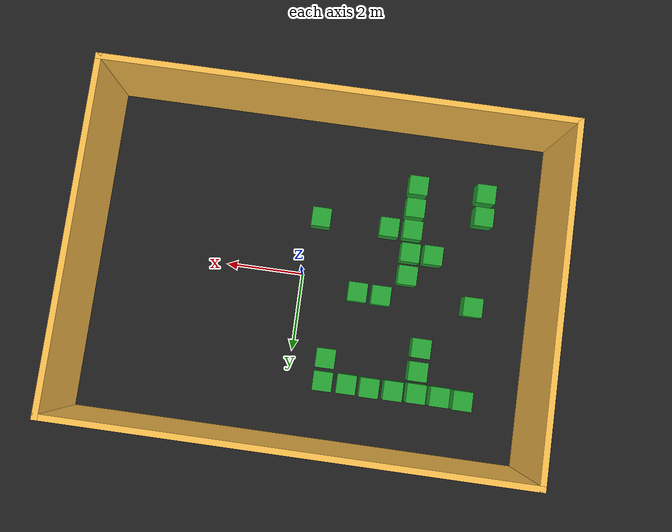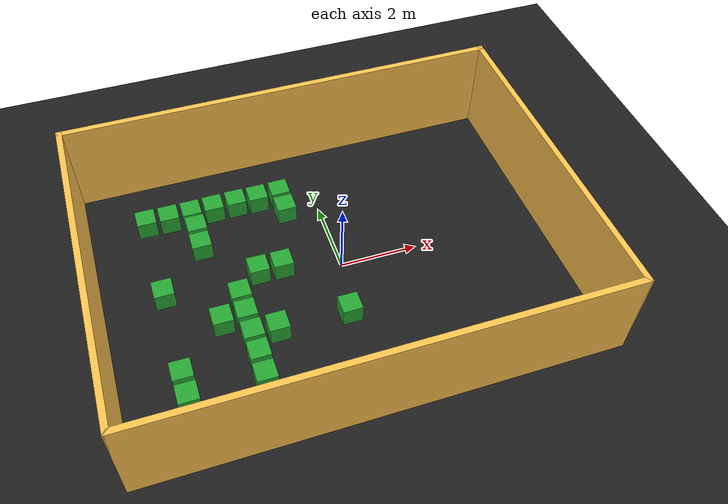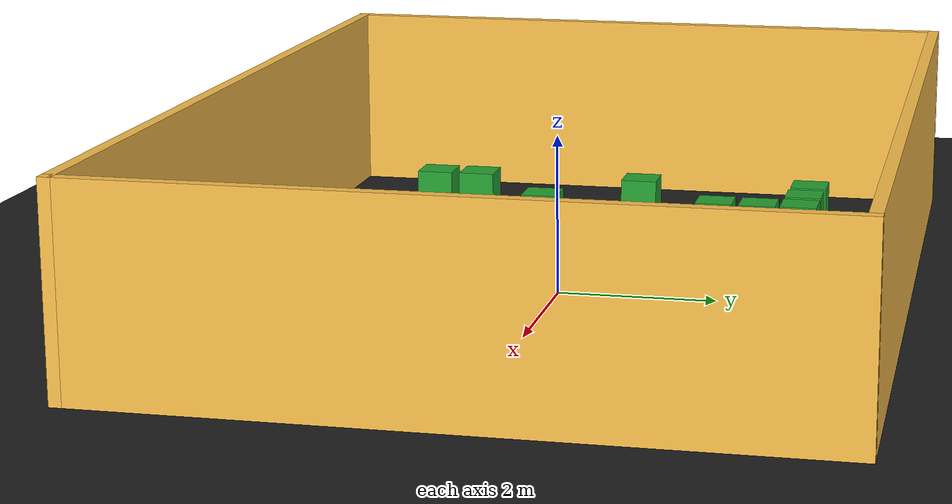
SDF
<sdf version="1.7">
 <world name="default">
  <model name="ground_plane">
   <static>1</static>
   <link name="link">
    <collision name="collision">
     <geometry><plane><normal>0 0 1</normal><size>100 100</size></plane></geometry>
     <surface>
      <friction>
       <ode>
        <mu>1.000000</mu>
        <mu2>1.000000</mu2>
        <fdir1>0.000000 0.000000 0.000000</fdir1>
        <slip1>0.000000</slip1>
        <slip2>0.000000</slip2>
       </ode>
      </friction>
      <bounce>
       <restitution_coefficient>0.000000</restitution_coefficient>
       <threshold>100000.000000</threshold>
      </bounce>
      <contact>
       <ode>
        <soft_cfm>0.000000</soft_cfm>
        <soft_erp>0.200000</soft_erp>
        <kp>1000000000.000000</kp>
        <kd>1.000000</kd>
        <max_vel>100.000000</max_vel>
        <min_depth>0.001000</min_depth>
       </ode>
      </contact>
     </surface>
    </collision>
    <visual name="visual">
     <cast_shadows>0</cast_shadows>
     <geometry><plane><normal>0 0 1</normal><size>100 100</size></plane></geometry>
     <material>
      <script><uri>file://media/materials/scripts/gazebo.material</uri><name>Gazebo/Black</name></script>
     </material>
    </visual>
   </link>
  </model>
  <model name="aius3011">
   <pose>-0.3 0 0 0 -0 0</pose>
   <link name="Wall_0">
    <collision name="Wall_0_Collision">
     <geometry><box><size>11.7 0.15 2.5</size></box></geometry>
     <pose>0 0 1.25 0 -0 0</pose>
    </collision>
    <visual name="Wall_0_Visual">
     <pose>0 0 1.25 0 -0 0</pose>
     <geometry><box><size>11.7 0.15 2.5</size></box></geometry>
     <material>
      <script><uri>file://media/materials/scripts/gazebo.material</uri><name>Gazebo/Grey</name></script>
      <ambient>1 0.764706 0.305882 1</ambient>
     </material>
     <meta><layer>0</layer></meta>
    </visual>
    <pose>-0 -4.275 0 0 -0 0</pose>
   </link>
   <link name="Wall_2">
    <collision name="Wall_2_Collision">
     <geometry><box><size>8.7 0.15 2.5</size></box></geometry>
     <pose>0 0 1.25 0 -0 0</pose>
    </collision>
    <visual name="Wall_2_Visual">
     <pose>0 0 1.25 0 -0 0</pose>
     <geometry><box><size>8.7 0.15 2.5</size></box></geometry>
     <material>
      <script><uri>file://media/materials/scripts/gazebo.material</uri><name>Gazebo/Grey</name></script>
      <ambient>1 0.764706 0.305882 1</ambient>
     </material>
     <meta><layer>0</layer></meta>
    </visual>
    <pose>-5.775 0 0 0 -0 1.5708</pose>
   </link>
   <link name="Wall_4">
    <collision name="Wall_4_Collision">
     <geometry><box><size>11.7 0.15 2.5</size></box></geometry>
     <pose>0 0 1.25 0 -0 0</pose>
    </collision>
    <visual name="Wall_4_Visual">
     <pose>0 0 1.25 0 -0 0</pose>
     <geometry><box><size>11.7 0.15 2.5</size></box></geometry>
     <material>
      <script><uri>file://media/materials/scripts/gazebo.material</uri><name>Gazebo/Grey</name></script>
      <ambient>1 0.764706 0.305882 1</ambient>
     </material>
     <meta><layer>0</layer></meta>
    </visual>
    <pose>-0 4.275 0 0 -0 0</pose>
   </link>
   <link name="Wall_6">
    <collision name="Wall_6_Collision">
     <geometry><box><size>8.7 0.15 2.5</size></box></geometry>
     <pose>0 0 1.25 0 -0 0</pose>
    </collision>
    <visual name="Wall_6_Visual">
     <pose>0 0 1.25 0 -0 0</pose>
     <geometry><box><size>8.7 0.15 2.5</size></box></geometry>
     <material>
      <script><uri>file://media/materials/scripts/gazebo.material</uri><name>Gazebo/Grey</name></script>
      <ambient>1 0.764706 0.305882 1</ambient>
     </material>
     <meta><layer>0</layer></meta>
    </visual>
    <pose>5.775 0 0 0 -0 -1.5708</pose>
   </link>
   <static>1</static>
  </model>
  <model name="obstacle18">
   <link name="link_0">
    <inertial>
     <mass>0.1</mass>
     <inertia><ixx>10</ixx><ixy>0</ixy><ixz>0</ixz><iyy>10</iyy><iyz>0</iyz><izz>10</izz></inertia>
    </inertial>
    <visual name="visual">
     <geometry><box><size>0.5 0.5 0.5</size></box></geometry>
     <material>
      <lighting>1</lighting>
      <script><uri>file://media/materials/scripts/gazebo.material</uri><name>Gazebo/Green</name></script>
      <shader type="pixel"><normal_map>__default__</normal_map></shader>
      <ambient>0.3 0.3 0.3 1</ambient>
      <diffuse>0.7 0.7 0.7 1</diffuse>
      <specular>0.01 0.01 0.01 1</specular>
      <emissive>0 0 0 1</emissive>
     </material>
    </visual>
    <collision name="collision">
     <geometry><box><size>0.5 0.5 0.5</size></box></geometry>
     <surface>
      <friction>
       <ode>
        <mu>0.998500</mu>
        <mu2>0.998500</mu2>
        <fdir1>0.000000 0.000000 0.000000</fdir1>
        <slip1>0.000000</slip1>
        <slip2>0.000000</slip2>
       </ode>
      </friction>
      <bounce>
       <restitution_coefficient>0.000000</restitution_coefficient>
       <threshold>100000.000000</threshold>
      </bounce>
      <contact>
       <ode>
        <soft_cfm>0.000000</soft_cfm>
        <soft_erp>0.200000</soft_erp>
        <kp>100000.000000</kp>
        <kd>1.000000</kd>
        <max_vel>100.000000</max_vel>
        <min_depth>0.001000</min_depth>
       </ode>
      </contact>
     </surface>
     <laser_retro>0.000000</laser_retro>
    </collision>
   </link>
   <static>0</static>
   <pose>-0.296477 -1.51677 0.26 0 -0 0</pose>
  </model>
  <model name="obstacle19">
   <link name="link_0">
    <inertial>
     <mass>0.1</mass>
     <inertia><ixx>10</ixx><ixy>0</ixy><ixz>0</ixz><iyy>10</iyy><iyz>0</iyz><izz>10</izz></inertia>
    </inertial>
    <visual name="visual">
     <geometry><box><size>0.5 0.5 0.5</size></box></geometry>
     <material>
      <lighting>1</lighting>
      <script><uri>file://media/materials/scripts/gazebo.material</uri><name>Gazebo/Green</name></script>
      <shader type="pixel"><normal_map>__default__</normal_map></shader>
      <ambient>0.3 0.3 0.3 1</ambient>
      <diffuse>0.7 0.7 0.7 1</diffuse>
      <specular>0.01 0.01 0.01 1</specular>
      <emissive>0 0 0 1</emissive>
     </material>
    </visual>
    <collision name="collision">
     <geometry><box><size>0.5 0.5 0.5</size></box></geometry>
     <surface>
      <friction>
       <ode>
        <mu>0.998500</mu>
        <mu2>0.998500</mu2>
        <fdir1>0.000000 0.000000 0.000000</fdir1>
        <slip1>0.000000</slip1>
        <slip2>0.000000</slip2>
       </ode>
      </friction>
      <bounce>
       <restitution_coefficient>0.000000</restitution_coefficient>
       <threshold>100000.000000</threshold>
      </bounce>
      <contact>
       <ode>
        <soft_cfm>0.000000</soft_cfm>
        <soft_erp>0.200000</soft_erp>
        <kp>100000.000000</kp>
        <kd>1.000000</kd>
        <max_vel>100.000000</max_vel>
        <min_depth>0.001000</min_depth>
       </ode>
      </contact>
     </surface>
     <laser_retro>0.000000</laser_retro>
    </collision>
   </link>
   <static>0</static>
   <pose>-0.901554 2.6911 0.26 0 -0 0</pose>
  </model>
  <model name="obstacle20">
   <link name="link_0">
    <inertial>
     <mass>0.1</mass>
     <inertia><ixx>10</ixx><ixy>0</ixy><ixz>0</ixz><iyy>10</iyy><iyz>0</iyz><izz>10</izz></inertia>
    </inertial>
    <visual name="visual">
     <geometry><box><size>0.5 0.5 0.5</size></box></geometry>
     <material>
      <lighting>1</lighting>
      <script><uri>file://media/materials/scripts/gazebo.material</uri><name>Gazebo/Green</name></script>
      <shader type="pixel"><normal_map>__default__</normal_map></shader>
      <ambient>0.3 0.3 0.3 1</ambient>
      <diffuse>0.7 0.7 0.7 1</diffuse>
      <specular>0.01 0.01 0.01 1</specular>
      <emissive>0 0 0 1</emissive>
     </material>
    </visual>
    <collision name="collision">
     <geometry><box><size>0.5 0.5 0.5</size></box></geometry>
     <surface>
      <friction>
       <ode>
        <mu>0.998500</mu>
        <mu2>0.998500</mu2>
        <fdir1>0.000000 0.000000 0.000000</fdir1>
        <slip1>0.000000</slip1>
        <slip2>0.000000</slip2>
       </ode>
      </friction>
      <bounce>
       <restitution_coefficient>0.000000</restitution_coefficient>
       <threshold>100000.000000</threshold>
      </bounce>
      <contact>
       <ode>
        <soft_cfm>0.000000</soft_cfm>
        <soft_erp>0.200000</soft_erp>
        <kp>100000.000000</kp>
        <kd>1.000000</kd>
        <max_vel>100.000000</max_vel>
        <min_depth>0.001000</min_depth>
       </ode>
      </contact>
     </surface>
     <laser_retro>0.000000</laser_retro>
    </collision>
   </link>
   <static>0</static>
   <pose>-0.898111 2.10192 0.26 0 -0 0</pose>
  </model>
  <model name="obstacle21">
   <link name="link_0">
    <inertial>
     <mass>0.1</mass>
     <inertia><ixx>10</ixx><ixy>0</ixy><ixz>0</ixz><iyy>10</iyy><iyz>0</iyz><izz>10</izz></inertia>
    </inertial>
    <visual name="visual">
     <geometry><box><size>0.5 0.5 0.5</size></box></geometry>
     <material>
      <lighting>1</lighting>
      <script><uri>file://media/materials/scripts/gazebo.material</uri><name>Gazebo/Green</name></script>
      <shader type="pixel"><normal_map>__default__</normal_map></shader>
      <ambient>0.3 0.3 0.3 1</ambient>
      <diffuse>0.7 0.7 0.7 1</diffuse>
      <specular>0.01 0.01 0.01 1</specular>
      <emissive>0 0 0 1</emissive>
     </material>
    </visual>
    <collision name="collision">
     <geometry><box><size>0.5 0.5 0.5</size></box></geometry>
     <surface>
      <friction>
       <ode>
        <mu>0.998500</mu>
        <mu2>0.998500</mu2>
        <fdir1>0.000000 0.000000 0.000000</fdir1>
        <slip1>0.000000</slip1>
        <slip2>0.000000</slip2>
       </ode>
      </friction>
      <bounce>
       <restitution_coefficient>0.000000</restitution_coefficient>
       <threshold>100000.000000</threshold>
      </bounce>
      <contact>
       <ode>
        <soft_cfm>0.000000</soft_cfm>
        <soft_erp>0.200000</soft_erp>
        <kp>100000.000000</kp>
        <kd>1.000000</kd>
        <max_vel>100.000000</max_vel>
        <min_depth>0.001000</min_depth>
       </ode>
      </contact>
     </surface>
     <laser_retro>0.000000</laser_retro>
    </collision>
   </link>
   <static>0</static>
   <pose>-1.5153 2.68505 0.26 0 -0 0</pose>
  </model>
  <model name="obstacle22">
   <link name="link_0">
    <inertial>
     <mass>0.1</mass>
     <inertia><ixx>10</ixx><ixy>0</ixy><ixz>0</ixz><iyy>10</iyy><iyz>0</iyz><izz>10</izz></inertia>
    </inertial>
    <visual name="visual">
     <geometry><box><size>0.5 0.5 0.5</size></box></geometry>
     <material>
      <lighting>1</lighting>
      <script><uri>file://media/materials/scripts/gazebo.material</uri><name>Gazebo/Green</name></script>
      <shader type="pixel"><normal_map>__default__</normal_map></shader>
      <ambient>0.3 0.3 0.3 1</ambient>
      <diffuse>0.7 0.7 0.7 1</diffuse>
      <specular>0.01 0.01 0.01 1</specular>
      <emissive>0 0 0 1</emissive>
     </material>
    </visual>
    <collision name="collision">
     <geometry><box><size>0.5 0.5 0.5</size></box></geometry>
     <surface>
      <friction>
       <ode>
        <mu>0.998500</mu>
        <mu2>0.998500</mu2>
        <fdir1>0.000000 0.000000 0.000000</fdir1>
        <slip1>0.000000</slip1>
        <slip2>0.000000</slip2>
       </ode>
      </friction>
      <bounce>
       <restitution_coefficient>0.000000</restitution_coefficient>
       <threshold>100000.000000</threshold>
      </bounce>
      <contact>
       <ode>
        <soft_cfm>0.000000</soft_cfm>
        <soft_erp>0.200000</soft_erp>
        <kp>100000.000000</kp>
        <kd>1.000000</kd>
        <max_vel>100.000000</max_vel>
        <min_depth>0.001000</min_depth>
       </ode>
      </contact>
     </surface>
     <laser_retro>0.000000</laser_retro>
    </collision>
   </link>
   <static>0</static>
   <pose>-2.1056 2.69717 0.26 0 -0 0</pose>
  </model>
  <model name="obstacle23">
   <link name="link_0">
    <inertial>
     <mass>0.1</mass>
     <inertia><ixx>10</ixx><ixy>0</ixy><ixz>0</ixz><iyy>10</iyy><iyz>0</iyz><izz>10</izz></inertia>
    </inertial>
    <visual name="visual">
     <geometry><box><size>0.5 0.5 0.5</size></box></geometry>
     <material>
      <lighting>1</lighting>
      <script><uri>file://media/materials/scripts/gazebo.material</uri><name>Gazebo/Green</name></script>
      <shader type="pixel"><normal_map>__default__</normal_map></shader>
      <ambient>0.3 0.3 0.3 1</ambient>
      <diffuse>0.7 0.7 0.7 1</diffuse>
      <specular>0.01 0.01 0.01 1</specular>
      <emissive>0 0 0 1</emissive>
     </material>
    </visual>
    <collision name="collision">
     <geometry><box><size>0.5 0.5 0.5</size></box></geometry>
     <surface>
      <friction>
       <ode>
        <mu>0.998500</mu>
        <mu2>0.998500</mu2>
        <fdir1>0.000000 0.000000 0.000000</fdir1>
        <slip1>0.000000</slip1>
        <slip2>0.000000</slip2>
       </ode>
      </friction>
      <bounce>
       <restitution_coefficient>0.000000</restitution_coefficient>
       <threshold>100000.000000</threshold>
      </bounce>
      <contact>
       <ode>
        <soft_cfm>0.000000</soft_cfm>
        <soft_erp>0.200000</soft_erp>
        <kp>100000.000000</kp>
        <kd>1.000000</kd>
        <max_vel>100.000000</max_vel>
        <min_depth>0.001000</min_depth>
       </ode>
      </contact>
     </surface>
     <laser_retro>0.000000</laser_retro>
    </collision>
   </link>
   <static>0</static>
   <pose>-2.71726 2.68879 0.26 0 -0 0</pose>
  </model>
  <model name="obstacle24">
   <link name="link_0">
    <inertial>
     <mass>0.1</mass>
     <inertia><ixx>10</ixx><ixy>0</ixy><ixz>0</ixz><iyy>10</iyy><iyz>0</iyz><izz>10</izz></inertia>
    </inertial>
    <visual name="visual">
     <geometry><box><size>0.5 0.5 0.5</size></box></geometry>
     <material>
      <lighting>1</lighting>
      <script><uri>file://media/materials/scripts/gazebo.material</uri><name>Gazebo/Green</name></script>
      <shader type="pixel"><normal_map>__default__</normal_map></shader>
      <ambient>0.3 0.3 0.3 1</ambient>
      <diffuse>0.7 0.7 0.7 1</diffuse>
      <specular>0.01 0.01 0.01 1</specular>
      <emissive>0 0 0 1</emissive>
     </material>
    </visual>
    <collision name="collision">
     <geometry><box><size>0.5 0.5 0.5</size></box></geometry>
     <surface>
      <friction>
       <ode>
        <mu>0.998500</mu>
        <mu2>0.998500</mu2>
        <fdir1>0.000000 0.000000 0.000000</fdir1>
        <slip1>0.000000</slip1>
        <slip2>0.000000</slip2>
       </ode>
      </friction>
      <bounce>
       <restitution_coefficient>0.000000</restitution_coefficient>
       <threshold>100000.000000</threshold>
      </bounce>
      <contact>
       <ode>
        <soft_cfm>0.000000</soft_cfm>
        <soft_erp>0.200000</soft_erp>
        <kp>100000.000000</kp>
        <kd>1.000000</kd>
        <max_vel>100.000000</max_vel>
        <min_depth>0.001000</min_depth>
       </ode>
      </contact>
     </surface>
     <laser_retro>0.000000</laser_retro>
    </collision>
   </link>
   <static>0</static>
   <pose>-3.31293 2.67633 0.26 0 -0 0</pose>
  </model>
  <model name="obstacle26">
   <link name="link_0">
    <inertial>
     <mass>0.1</mass>
     <inertia><ixx>10</ixx><ixy>0</ixy><ixz>0</ixz><iyy>10</iyy><iyz>0</iyz><izz>10</izz></inertia>
    </inertial>
    <visual name="visual">
     <geometry><box><size>0.5 0.5 0.5</size></box></geometry>
     <material>
      <lighting>1</lighting>
      <script><uri>file://media/materials/scripts/gazebo.material</uri><name>Gazebo/Green</name></script>
      <shader type="pixel"><normal_map>__default__</normal_map></shader>
      <ambient>0.3 0.3 0.3 1</ambient>
      <diffuse>0.7 0.7 0.7 1</diffuse>
      <specular>0.01 0.01 0.01 1</specular>
      <emissive>0 0 0 1</emissive>
     </material>
    </visual>
    <collision name="collision">
     <geometry><box><size>0.5 0.5 0.5</size></box></geometry>
     <surface>
      <friction>
       <ode>
        <mu>0.998500</mu>
        <mu2>0.998500</mu2>
        <fdir1>0.000000 0.000000 0.000000</fdir1>
        <slip1>0.000000</slip1>
        <slip2>0.000000</slip2>
       </ode>
      </friction>
      <bounce>
       <restitution_coefficient>0.000000</restitution_coefficient>
       <threshold>100000.000000</threshold>
      </bounce>
      <contact>
       <ode>
        <soft_cfm>0.000000</soft_cfm>
        <soft_erp>0.200000</soft_erp>
        <kp>100000.000000</kp>
        <kd>1.000000</kd>
        <max_vel>100.000000</max_vel>
        <min_depth>0.001000</min_depth>
       </ode>
      </contact>
     </surface>
     <laser_retro>0.000000</laser_retro>
    </collision>
   </link>
   <static>0</static>
   <pose>-3.90921 2.67984 0.26 0 -0 0</pose>
  </model>
  <model name="obstacle27">
   <link name="link_0">
    <inertial>
     <mass>0.1</mass>
     <inertia><ixx>10</ixx><ixy>0</ixy><ixz>0</ixz><iyy>10</iyy><iyz>0</iyz><izz>10</izz></inertia>
    </inertial>
    <visual name="visual">
     <geometry><box><size>0.5 0.5 0.5</size></box></geometry>
     <material>
      <lighting>1</lighting>
      <script><uri>file://media/materials/scripts/gazebo.material</uri><name>Gazebo/Green</name></script>
      <shader type="pixel"><normal_map>__default__</normal_map></shader>
      <ambient>0.3 0.3 0.3 1</ambient>
      <diffuse>0.7 0.7 0.7 1</diffuse>
      <specular>0.01 0.01 0.01 1</specular>
      <emissive>0 0 0 1</emissive>
     </material>
    </visual>
    <collision name="collision">
     <geometry><box><size>0.5 0.5 0.5</size></box></geometry>
     <surface>
      <friction>
       <ode>
        <mu>0.998500</mu>
        <mu2>0.998500</mu2>
        <fdir1>0.000000 0.000000 0.000000</fdir1>
        <slip1>0.000000</slip1>
        <slip2>0.000000</slip2>
       </ode>
      </friction>
      <bounce>
       <restitution_coefficient>0.000000</restitution_coefficient>
       <threshold>100000.000000</threshold>
      </bounce>
      <contact>
       <ode>
        <soft_cfm>0.000000</soft_cfm>
        <soft_erp>0.200000</soft_erp>
        <kp>100000.000000</kp>
        <kd>1.000000</kd>
        <max_vel>100.000000</max_vel>
        <min_depth>0.001000</min_depth>
       </ode>
      </contact>
     </surface>
     <laser_retro>0.000000</laser_retro>
    </collision>
   </link>
   <static>0</static>
   <pose>-4.50406 2.69467 0.26 0 -0 0</pose>
  </model>
  <model name="obstacle28">
   <link name="link_0">
    <inertial>
     <mass>0.1</mass>
     <inertia><ixx>10</ixx><ixy>0</ixy><ixz>0</ixz><iyy>10</iyy><iyz>0</iyz><izz>10</izz></inertia>
    </inertial>
    <visual name="visual">
     <geometry><box><size>0.5 0.5 0.5</size></box></geometry>
     <material>
      <lighting>1</lighting>
      <script><uri>file://media/materials/scripts/gazebo.material</uri><name>Gazebo/Green</name></script>
      <shader type="pixel"><normal_map>__default__</normal_map></shader>
      <ambient>0.3 0.3 0.3 1</ambient>
      <diffuse>0.7 0.7 0.7 1</diffuse>
      <specular>0.01 0.01 0.01 1</specular>
      <emissive>0 0 0 1</emissive>
     </material>
    </visual>
    <collision name="collision">
     <geometry><box><size>0.5 0.5 0.5</size></box></geometry>
     <surface>
      <friction>
       <ode>
        <mu>0.998500</mu>
        <mu2>0.998500</mu2>
        <fdir1>0.000000 0.000000 0.000000</fdir1>
        <slip1>0.000000</slip1>
        <slip2>0.000000</slip2>
       </ode>
      </friction>
      <bounce>
       <restitution_coefficient>0.000000</restitution_coefficient>
       <threshold>100000.000000</threshold>
      </bounce>
      <contact>
       <ode>
        <soft_cfm>0.000000</soft_cfm>
        <soft_erp>0.200000</soft_erp>
        <kp>100000.000000</kp>
        <kd>1.000000</kd>
        <max_vel>100.000000</max_vel>
        <min_depth>0.001000</min_depth>
       </ode>
      </contact>
     </surface>
     <laser_retro>0.000000</laser_retro>
    </collision>
   </link>
   <static>0</static>
   <pose>-3.28864 2.1154 0.26 0 -0 0</pose>
  </model>
  <model name="obstacle29">
   <link name="link_0">
    <inertial>
     <mass>0.1</mass>
     <inertia><ixx>10</ixx><ixy>0</ixy><ixz>0</ixz><iyy>10</iyy><iyz>0</iyz><izz>10</izz></inertia>
    </inertial>
    <visual name="visual">
     <geometry><box><size>0.5 0.5 0.5</size></box></geometry>
     <material>
      <lighting>1</lighting>
      <script><uri>file://media/materials/scripts/gazebo.material</uri><name>Gazebo/Green</name></script>
      <shader type="pixel"><normal_map>__default__</normal_map></shader>
      <ambient>0.3 0.3 0.3 1</ambient>
      <diffuse>0.7 0.7 0.7 1</diffuse>
      <specular>0.01 0.01 0.01 1</specular>
      <emissive>0 0 0 1</emissive>
     </material>
    </visual>
    <collision name="collision">
     <geometry><box><size>0.5 0.5 0.5</size></box></geometry>
     <surface>
      <friction>
       <ode>
        <mu>0.998500</mu>
        <mu2>0.998500</mu2>
        <fdir1>0.000000 0.000000 0.000000</fdir1>
        <slip1>0.000000</slip1>
        <slip2>0.000000</slip2>
       </ode>
      </friction>
      <bounce>
       <restitution_coefficient>0.000000</restitution_coefficient>
       <threshold>100000.000000</threshold>
      </bounce>
      <contact>
       <ode>
        <soft_cfm>0.000000</soft_cfm>
        <soft_erp>0.200000</soft_erp>
        <kp>100000.000000</kp>
        <kd>1.000000</kd>
        <max_vel>100.000000</max_vel>
        <min_depth>0.001000</min_depth>
       </ode>
      </contact>
     </surface>
     <laser_retro>0.000000</laser_retro>
    </collision>
   </link>
   <static>0</static>
   <pose>-3.30047 1.51854 0.26 0 -0 0</pose>
  </model>
  <model name="obstacle30">
   <link name="link_0">
    <inertial>
     <mass>0.1</mass>
     <inertia><ixx>10</ixx><ixy>0</ixy><ixz>0</ixz><iyy>10</iyy><iyz>0</iyz><izz>10</izz></inertia>
    </inertial>
    <visual name="visual">
     <geometry><box><size>0.5 0.5 0.5</size></box></geometry>
     <material>
      <lighting>1</lighting>
      <script><uri>file://media/materials/scripts/gazebo.material</uri><name>Gazebo/Green</name></script>
      <shader type="pixel"><normal_map>__default__</normal_map></shader>
      <ambient>0.3 0.3 0.3 1</ambient>
      <diffuse>0.7 0.7 0.7 1</diffuse>
      <specular>0.01 0.01 0.01 1</specular>
      <emissive>0 0 0 1</emissive>
     </material>
    </visual>
    <collision name="collision">
     <geometry><box><size>0.5 0.5 0.5</size></box></geometry>
     <surface>
      <friction>
       <ode>
        <mu>0.998500</mu>
        <mu2>0.998500</mu2>
        <fdir1>0.000000 0.000000 0.000000</fdir1>
        <slip1>0.000000</slip1>
        <slip2>0.000000</slip2>
       </ode>
      </friction>
      <bounce>
       <restitution_coefficient>0.000000</restitution_coefficient>
       <threshold>100000.000000</threshold>
      </bounce>
      <contact>
       <ode>
        <soft_cfm>0.000000</soft_cfm>
        <soft_erp>0.200000</soft_erp>
        <kp>100000.000000</kp>
        <kd>1.000000</kd>
        <max_vel>100.000000</max_vel>
        <min_depth>0.001000</min_depth>
       </ode>
      </contact>
     </surface>
     <laser_retro>0.000000</laser_retro>
    </collision>
   </link>
   <static>0</static>
   <pose>-4.4925 0.283375 0.26 0 -0 0</pose>
  </model>
  <model name="obstacle31">
   <link name="link_0">
    <inertial>
     <mass>0.1</mass>
     <inertia><ixx>10</ixx><ixy>0</ixy><ixz>0</ixz><iyy>10</iyy><iyz>0</iyz><izz>10</izz></inertia>
    </inertial>
    <visual name="visual">
     <geometry><box><size>0.5 0.5 0.5</size></box></geometry>
     <material>
      <lighting>1</lighting>
      <script><uri>file://media/materials/scripts/gazebo.material</uri><name>Gazebo/Green</name></script>
      <shader type="pixel"><normal_map>__default__</normal_map></shader>
      <ambient>0.3 0.3 0.3 1</ambient>
      <diffuse>0.7 0.7 0.7 1</diffuse>
      <specular>0.01 0.01 0.01 1</specular>
      <emissive>0 0 0 1</emissive>
     </material>
    </visual>
    <collision name="collision">
     <geometry><box><size>0.5 0.5 0.5</size></box></geometry>
     <surface>
      <friction>
       <ode>
        <mu>0.998500</mu>
        <mu2>0.998500</mu2>
        <fdir1>0.000000 0.000000 0.000000</fdir1>
        <slip1>0.000000</slip1>
        <slip2>0.000000</slip2>
       </ode>
      </friction>
      <bounce>
       <restitution_coefficient>0.000000</restitution_coefficient>
       <threshold>100000.000000</threshold>
      </bounce>
      <contact>
       <ode>
        <soft_cfm>0.000000</soft_cfm>
        <soft_erp>0.200000</soft_erp>
        <kp>100000.000000</kp>
        <kd>1.000000</kd>
        <max_vel>100.000000</max_vel>
        <min_depth>0.001000</min_depth>
       </ode>
      </contact>
     </surface>
     <laser_retro>0.000000</laser_retro>
    </collision>
   </link>
   <static>0</static>
   <pose>-4.50835 -2.09974 0.26 0 -0 0</pose>
  </model>
  <model name="obstacle32">
   <link name="link_0">
    <inertial>
     <mass>0.1</mass>
     <inertia><ixx>10</ixx><ixy>0</ixy><ixz>0</ixz><iyy>10</iyy><iyz>0</iyz><izz>10</izz></inertia>
    </inertial>
    <visual name="visual">
     <geometry><box><size>0.5 0.5 0.5</size></box></geometry>
     <material>
      <lighting>1</lighting>
      <script><uri>file://media/materials/scripts/gazebo.material</uri><name>Gazebo/Green</name></script>
      <shader type="pixel"><normal_map>__default__</normal_map></shader>
      <ambient>0.3 0.3 0.3 1</ambient>
      <diffuse>0.7 0.7 0.7 1</diffuse>
      <specular>0.01 0.01 0.01 1</specular>
      <emissive>0 0 0 1</emissive>
     </material>
    </visual>
    <collision name="collision">
     <geometry><box><size>0.5 0.5 0.5</size></box></geometry>
     <surface>
      <friction>
       <ode>
        <mu>0.998500</mu>
        <mu2>0.998500</mu2>
        <fdir1>0.000000 0.000000 0.000000</fdir1>
        <slip1>0.000000</slip1>
        <slip2>0.000000</slip2>
       </ode>
      </friction>
      <bounce>
       <restitution_coefficient>0.000000</restitution_coefficient>
       <threshold>100000.000000</threshold>
      </bounce>
      <contact>
       <ode>
        <soft_cfm>0.000000</soft_cfm>
        <soft_erp>0.200000</soft_erp>
        <kp>100000.000000</kp>
        <kd>1.000000</kd>
        <max_vel>100.000000</max_vel>
        <min_depth>0.001000</min_depth>
       </ode>
      </contact>
     </surface>
     <laser_retro>0.000000</laser_retro>
    </collision>
   </link>
   <static>0</static>
   <pose>-4.49754 -2.71172 0.26 0 -0 0</pose>
  </model>
  <model name="obstacle33">
   <link name="link_0">
    <inertial>
     <mass>0.1</mass>
     <inertia><ixx>10</ixx><ixy>0</ixy><ixz>0</ixz><iyy>10</iyy><iyz>0</iyz><izz>10</izz></inertia>
    </inertial>
    <visual name="visual">
     <geometry><box><size>0.5 0.5 0.5</size></box></geometry>
     <material>
      <lighting>1</lighting>
      <script><uri>file://media/materials/scripts/gazebo.material</uri><name>Gazebo/Green</name></script>
      <shader type="pixel"><normal_map>__default__</normal_map></shader>
      <ambient>0.3 0.3 0.3 1</ambient>
      <diffuse>0.7 0.7 0.7 1</diffuse>
      <specular>0.01 0.01 0.01 1</specular>
      <emissive>0 0 0 1</emissive>
     </material>
    </visual>
    <collision name="collision">
     <geometry><box><size>0.5 0.5 0.5</size></box></geometry>
     <surface>
      <friction>
       <ode>
        <mu>0.998500</mu>
        <mu2>0.998500</mu2>
        <fdir1>0.000000 0.000000 0.000000</fdir1>
        <slip1>0.000000</slip1>
        <slip2>0.000000</slip2>
       </ode>
      </friction>
      <bounce>
       <restitution_coefficient>0.000000</restitution_coefficient>
       <threshold>100000.000000</threshold>
      </bounce>
      <contact>
       <ode>
        <soft_cfm>0.000000</soft_cfm>
        <soft_erp>0.200000</soft_erp>
        <kp>100000.000000</kp>
        <kd>1.000000</kd>
        <max_vel>100.000000</max_vel>
        <min_depth>0.001000</min_depth>
       </ode>
      </contact>
     </surface>
     <laser_retro>0.000000</laser_retro>
    </collision>
   </link>
   <static>0</static>
   <pose>-1.48729 0.301038 0.26 0 -0 0</pose>
  </model>
  <model name="obstacle34">
   <link name="link_0">
    <inertial>
     <mass>0.1</mass>
     <inertia><ixx>10</ixx><ixy>0</ixy><ixz>0</ixz><iyy>10</iyy><iyz>0</iyz><izz>10</izz></inertia>
    </inertial>
    <visual name="visual">
     <geometry><box><size>0.5 0.5 0.5</size></box></geometry>
     <material>
      <lighting>1</lighting>
      <script><uri>file://media/materials/scripts/gazebo.material</uri><name>Gazebo/Green</name></script>
      <shader type="pixel"><normal_map>__default__</normal_map></shader>
      <ambient>0.3 0.3 0.3 1</ambient>
      <diffuse>0.7 0.7 0.7 1</diffuse>
      <specular>0.01 0.01 0.01 1</specular>
      <emissive>0 0 0 1</emissive>
     </material>
    </visual>
    <collision name="collision">
     <geometry><box><size>0.5 0.5 0.5</size></box></geometry>
     <surface>
      <friction>
       <ode>
        <mu>0.998500</mu>
        <mu2>0.998500</mu2>
        <fdir1>0.000000 0.000000 0.000000</fdir1>
        <slip1>0.000000</slip1>
        <slip2>0.000000</slip2>
       </ode>
      </friction>
      <bounce>
       <restitution_coefficient>0.000000</restitution_coefficient>
       <threshold>100000.000000</threshold>
      </bounce>
      <contact>
       <ode>
        <soft_cfm>0.000000</soft_cfm>
        <soft_erp>0.200000</soft_erp>
        <kp>100000.000000</kp>
        <kd>1.000000</kd>
        <max_vel>100.000000</max_vel>
        <min_depth>0.001000</min_depth>
       </ode>
      </contact>
     </surface>
     <laser_retro>0.000000</laser_retro>
    </collision>
   </link>
   <static>0</static>
   <pose>-2.10366 0.307203 0.26 0 -0 0</pose>
  </model>
  <model name="obstacle35">
   <link name="link_0">
    <inertial>
     <mass>0.1</mass>
     <inertia><ixx>10</ixx><ixy>0</ixy><ixz>0</ixz><iyy>10</iyy><iyz>0</iyz><izz>10</izz></inertia>
    </inertial>
    <visual name="visual">
     <geometry><box><size>0.5 0.5 0.5</size></box></geometry>
     <material>
      <lighting>1</lighting>
      <script><uri>file://media/materials/scripts/gazebo.material</uri><name>Gazebo/Green</name></script>
      <shader type="pixel"><normal_map>__default__</normal_map></shader>
      <ambient>0.3 0.3 0.3 1</ambient>
      <diffuse>0.7 0.7 0.7 1</diffuse>
      <specular>0.01 0.01 0.01 1</specular>
      <emissive>0 0 0 1</emissive>
     </material>
    </visual>
    <collision name="collision">
     <geometry><box><size>0.5 0.5 0.5</size></box></geometry>
     <surface>
      <friction>
       <ode>
        <mu>0.998500</mu>
        <mu2>0.998500</mu2>
        <fdir1>0.000000 0.000000 0.000000</fdir1>
        <slip1>0.000000</slip1>
        <slip2>0.000000</slip2>
       </ode>
      </friction>
      <bounce>
       <restitution_coefficient>0.000000</restitution_coefficient>
       <threshold>100000.000000</threshold>
      </bounce>
      <contact>
       <ode>
        <soft_cfm>0.000000</soft_cfm>
        <soft_erp>0.200000</soft_erp>
        <kp>100000.000000</kp>
        <kd>1.000000</kd>
        <max_vel>100.000000</max_vel>
        <min_depth>0.001000</min_depth>
       </ode>
      </contact>
     </surface>
     <laser_retro>0.000000</laser_retro>
    </collision>
   </link>
   <static>0</static>
   <pose>-2.71698 -0.306143 0.26 0 -0 0</pose>
  </model>
  <model name="obstacle37">
   <link name="link_0">
    <inertial>
     <mass>0.1</mass>
     <inertia><ixx>10</ixx><ixy>0</ixy><ixz>0</ixz><iyy>10</iyy><iyz>0</iyz><izz>10</izz></inertia>
    </inertial>
    <visual name="visual">
     <geometry><box><size>0.5 0.5 0.5</size></box></geometry>
     <material>
      <lighting>1</lighting>
      <script><uri>file://media/materials/scripts/gazebo.material</uri><name>Gazebo/Green</name></script>
      <shader type="pixel"><normal_map>__default__</normal_map></shader>
      <ambient>0.3 0.3 0.3 1</ambient>
      <diffuse>0.7 0.7 0.7 1</diffuse>
      <specular>0.01 0.01 0.01 1</specular>
      <emissive>0 0 0 1</emissive>
     </material>
    </visual>
    <collision name="collision">
     <geometry><box><size>0.5 0.5 0.5</size></box></geometry>
     <surface>
      <friction>
       <ode>
        <mu>0.998500</mu>
        <mu2>0.998500</mu2>
        <fdir1>0.000000 0.000000 0.000000</fdir1>
        <slip1>0.000000</slip1>
        <slip2>0.000000</slip2>
       </ode>
      </friction>
      <bounce>
       <restitution_coefficient>0.000000</restitution_coefficient>
       <threshold>100000.000000</threshold>
      </bounce>
      <contact>
       <ode>
        <soft_cfm>0.000000</soft_cfm>
        <soft_erp>0.200000</soft_erp>
        <kp>100000.000000</kp>
        <kd>1.000000</kd>
        <max_vel>100.000000</max_vel>
        <min_depth>0.001000</min_depth>
       </ode>
      </contact>
     </surface>
     <laser_retro>0.000000</laser_retro>
    </collision>
   </link>
   <static>0</static>
   <pose>-2.71629 -0.903078 0.26 0 -0 0</pose>
  </model>
  <model name="obstacle38">
   <link name="link_0">
    <inertial>
     <mass>0.1</mass>
     <inertia><ixx>10</ixx><ixy>0</ixy><ixz>0</ixz><iyy>10</iyy><iyz>0</iyz><izz>10</izz></inertia>
    </inertial>
    <visual name="visual">
     <geometry><box><size>0.5 0.5 0.5</size></box></geometry>
     <material>
      <lighting>1</lighting>
      <script><uri>file://media/materials/scripts/gazebo.material</uri><name>Gazebo/Green</name></script>
      <shader type="pixel"><normal_map>__default__</normal_map></shader>
      <ambient>0.3 0.3 0.3 1</ambient>
      <diffuse>0.7 0.7 0.7 1</diffuse>
      <specular>0.01 0.01 0.01 1</specular>
      <emissive>0 0 0 1</emissive>
     </material>
    </visual>
    <collision name="collision">
     <geometry><box><size>0.5 0.5 0.5</size></box></geometry>
     <surface>
      <friction>
       <ode>
        <mu>0.998500</mu>
        <mu2>0.998500</mu2>
        <fdir1>0.000000 0.000000 0.000000</fdir1>
        <slip1>0.000000</slip1>
        <slip2>0.000000</slip2>
       </ode>
      </friction>
      <bounce>
       <restitution_coefficient>0.000000</restitution_coefficient>
       <threshold>100000.000000</threshold>
      </bounce>
      <contact>
       <ode>
        <soft_cfm>0.000000</soft_cfm>
        <soft_erp>0.200000</soft_erp>
        <kp>100000.000000</kp>
        <kd>1.000000</kd>
        <max_vel>100.000000</max_vel>
        <min_depth>0.001000</min_depth>
       </ode>
      </contact>
     </surface>
     <laser_retro>0.000000</laser_retro>
    </collision>
   </link>
   <static>0</static>
   <pose>-2.70624 -1.50777 0.26 0 -0 0</pose>
  </model>
  <model name="obstacle39">
   <link name="link_0">
    <inertial>
     <mass>0.1</mass>
     <inertia><ixx>10</ixx><ixy>0</ixy><ixz>0</ixz><iyy>10</iyy><iyz>0</iyz><izz>10</izz></inertia>
    </inertial>
    <visual name="visual">
     <geometry><box><size>0.5 0.5 0.5</size></box></geometry>
     <material>
      <lighting>1</lighting>
      <script><uri>file://media/materials/scripts/gazebo.material</uri><name>Gazebo/Green</name></script>
      <shader type="pixel"><normal_map>__default__</normal_map></shader>
      <ambient>0.3 0.3 0.3 1</ambient>
      <diffuse>0.7 0.7 0.7 1</diffuse>
      <specular>0.01 0.01 0.01 1</specular>
      <emissive>0 0 0 1</emissive>
     </material>
    </visual>
    <collision name="collision">
     <geometry><box><size>0.5 0.5 0.5</size></box></geometry>
     <surface>
      <friction>
       <ode>
        <mu>0.998500</mu>
        <mu2>0.998500</mu2>
        <fdir1>0.000000 0.000000 0.000000</fdir1>
        <slip1>0.000000</slip1>
        <slip2>0.000000</slip2>
       </ode>
      </friction>
      <bounce>
       <restitution_coefficient>0.000000</restitution_coefficient>
       <threshold>100000.000000</threshold>
      </bounce>
      <contact>
       <ode>
        <soft_cfm>0.000000</soft_cfm>
        <soft_erp>0.200000</soft_erp>
        <kp>100000.000000</kp>
        <kd>1.000000</kd>
        <max_vel>100.000000</max_vel>
        <min_depth>0.001000</min_depth>
       </ode>
      </contact>
     </surface>
     <laser_retro>0.000000</laser_retro>
    </collision>
   </link>
   <static>0</static>
   <pose>-2.7063 -2.09597 0.26 0 -0 0</pose>
  </model>
  <model name="obstacle40">
   <link name="link_0">
    <inertial>
     <mass>0.1</mass>
     <inertia><ixx>10</ixx><ixy>0</ixy><ixz>0</ixz><iyy>10</iyy><iyz>0</iyz><izz>10</izz></inertia>
    </inertial>
    <visual name="visual">
     <geometry><box><size>0.5 0.5 0.5</size></box></geometry>
     <material>
      <lighting>1</lighting>
      <script><uri>file://media/materials/scripts/gazebo.material</uri><name>Gazebo/Green</name></script>
      <shader type="pixel"><normal_map>__default__</normal_map></shader>
      <ambient>0.3 0.3 0.3 1</ambient>
      <diffuse>0.7 0.7 0.7 1</diffuse>
      <specular>0.01 0.01 0.01 1</specular>
      <emissive>0 0 0 1</emissive>
     </material>
    </visual>
    <collision name="collision">
     <geometry><box><size>0.5 0.5 0.5</size></box></geometry>
     <surface>
      <friction>
       <ode>
        <mu>0.998500</mu>
        <mu2>0.998500</mu2>
        <fdir1>0.000000 0.000000 0.000000</fdir1>
        <slip1>0.000000</slip1>
        <slip2>0.000000</slip2>
       </ode>
      </friction>
      <bounce>
       <restitution_coefficient>0.000000</restitution_coefficient>
       <threshold>100000.000000</threshold>
      </bounce>
      <contact>
       <ode>
        <soft_cfm>0.000000</soft_cfm>
        <soft_erp>0.200000</soft_erp>
        <kp>100000.000000</kp>
        <kd>1.000000</kd>
        <max_vel>100.000000</max_vel>
        <min_depth>0.001000</min_depth>
       </ode>
      </contact>
     </surface>
     <laser_retro>0.000000</laser_retro>
    </collision>
   </link>
   <static>0</static>
   <pose>-2.71344 -2.70204 0.26 0 -0 0</pose>
  </model>
  <model name="obstacle41">
   <link name="link_0">
    <inertial>
     <mass>0.1</mass>
     <inertia><ixx>10</ixx><ixy>0</ixy><ixz>0</ixz><iyy>10</iyy><iyz>0</iyz><izz>10</izz></inertia>
    </inertial>
    <visual name="visual">
     <geometry><box><size>0.5 0.5 0.5</size></box></geometry>
     <material>
      <lighting>1</lighting>
      <script><uri>file://media/materials/scripts/gazebo.material</uri><name>Gazebo/Green</name></script>
      <shader type="pixel"><normal_map>__default__</normal_map></shader>
      <ambient>0.3 0.3 0.3 1</ambient>
      <diffuse>0.7 0.7 0.7 1</diffuse>
      <specular>0.01 0.01 0.01 1</specular>
      <emissive>0 0 0 1</emissive>
     </material>
    </visual>
    <collision name="collision">
     <geometry><box><size>0.5 0.5 0.5</size></box></geometry>
     <surface>
      <friction>
       <ode>
        <mu>0.998500</mu>
        <mu2>0.998500</mu2>
        <fdir1>0.000000 0.000000 0.000000</fdir1>
        <slip1>0.000000</slip1>
        <slip2>0.000000</slip2>
       </ode>
      </friction>
      <bounce>
       <restitution_coefficient>0.000000</restitution_coefficient>
       <threshold>100000.000000</threshold>
      </bounce>
      <contact>
       <ode>
        <soft_cfm>0.000000</soft_cfm>
        <soft_erp>0.200000</soft_erp>
        <kp>100000.000000</kp>
        <kd>1.000000</kd>
        <max_vel>100.000000</max_vel>
        <min_depth>0.001000</min_depth>
       </ode>
      </contact>
     </surface>
     <laser_retro>0.000000</laser_retro>
    </collision>
   </link>
   <static>0</static>
   <pose>-3.31263 -0.912784 0.26 0 -0 0</pose>
  </model>
  <model name="obstacle42">
   <link name="link_0">
    <inertial>
     <mass>0.1</mass>
     <inertia><ixx>10</ixx><ixy>0</ixy><ixz>0</ixz><iyy>10</iyy><iyz>0</iyz><izz>10</izz></inertia>
    </inertial>
    <visual name="visual">
     <geometry><box><size>0.5 0.5 0.5</size></box></geometry>
     <material>
      <lighting>1</lighting>
      <script><uri>file://media/materials/scripts/gazebo.material</uri><name>Gazebo/Green</name></script>
      <shader type="pixel"><normal_map>__default__</normal_map></shader>
      <ambient>0.3 0.3 0.3 1</ambient>
      <diffuse>0.7 0.7 0.7 1</diffuse>
      <specular>0.01 0.01 0.01 1</specular>
      <emissive>0 0 0 1</emissive>
     </material>
    </visual>
    <collision name="collision">
     <geometry><box><size>0.5 0.5 0.5</size></box></geometry>
     <surface>
      <friction>
       <ode>
        <mu>0.998500</mu>
        <mu2>0.998500</mu2>
        <fdir1>0.000000 0.000000 0.000000</fdir1>
        <slip1>0.000000</slip1>
        <slip2>0.000000</slip2>
       </ode>
      </friction>
      <bounce>
       <restitution_coefficient>0.000000</restitution_coefficient>
       <threshold>100000.000000</threshold>
      </bounce>
      <contact>
       <ode>
        <soft_cfm>0.000000</soft_cfm>
        <soft_erp>0.200000</soft_erp>
        <kp>100000.000000</kp>
        <kd>1.000000</kd>
        <max_vel>100.000000</max_vel>
        <min_depth>0.001000</min_depth>
       </ode>
      </contact>
     </surface>
     <laser_retro>0.000000</laser_retro>
    </collision>
   </link>
   <static>0</static>
   <pose>-2.09194 -1.49692 0.26 0 -0 0</pose>
  </model>
 </world>
</sdf>
